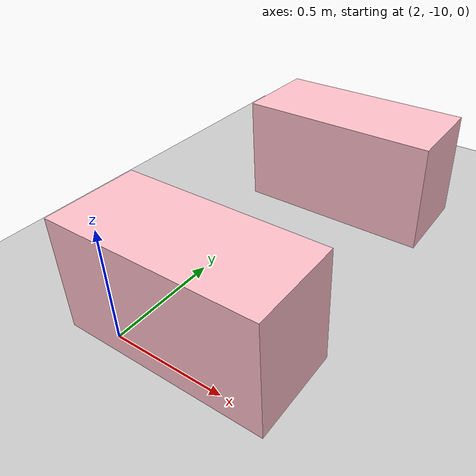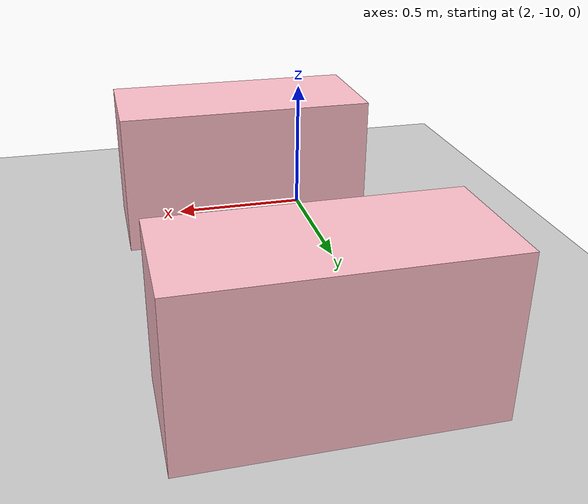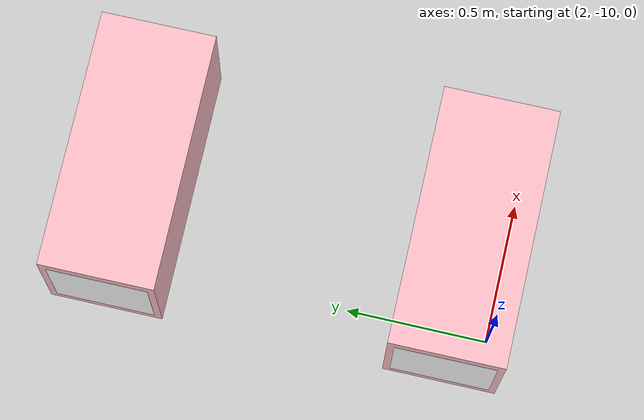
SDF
<sdf version="1.9">
 <world name="pig_pen_16units_world">
  <model name="ground_plane">
   <static>true</static>
   <link name="link">
    <collision name="collision">
     <geometry><plane><normal>0 0 1</normal><size>30 30</size></plane></geometry>
     <surface><friction><ode><mu>1.0</mu><mu2>1.0</mu2></ode></friction></surface>
    </collision>
    <visual name="visual">
     <geometry><plane><normal>0 0 1</normal><size>30 30</size></plane></geometry>
     <material>
      <ambient>0.8 0.8 0.8 1</ambient>
      <diffuse>0.8 0.8 0.8 1</diffuse>
      <specular>0.2 0.2 0.2 1</specular>
     </material>
    </visual>
   </link>
  </model>
  <include><uri>model://farm_pig</uri><name>pig9_b</name><pose>2.275 -8.675 0.27 0 0 3.1416</pose></include>
  <include><uri>model://farm_pig</uri><name>pig10_a</name><pose>2.275 -9.865 0.27 0 0 3.1416</pose></include>
 </world>
</sdf>
